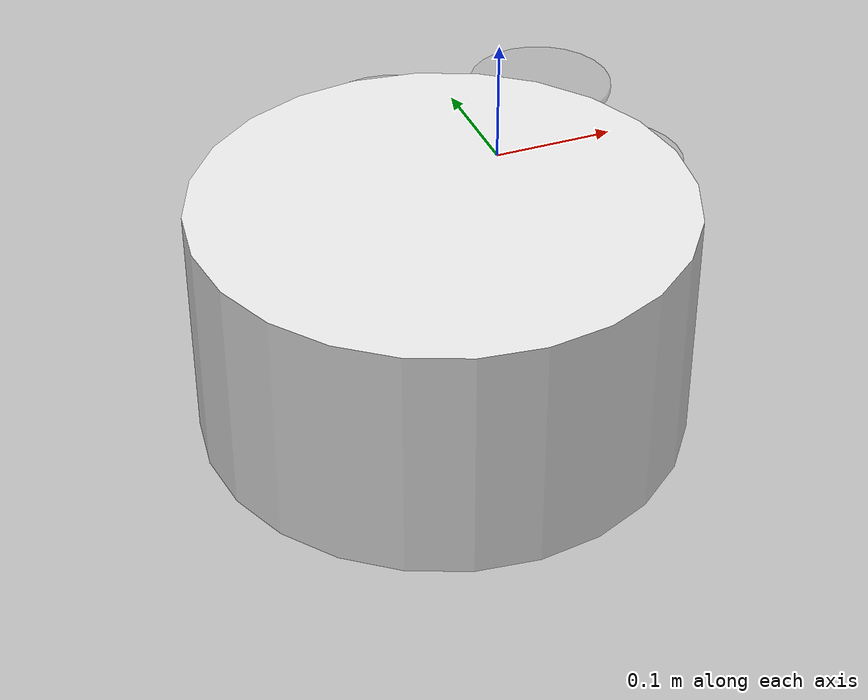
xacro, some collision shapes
<?xml version="1.0"?>
<robot xmlns:xacro="http://ros.org/wiki/xacro" name="copter">

<!-- Ray macros -->
	<xacro:include filename="$(find gscn_pioneer_description)/urdf/pioneer_ray.xacro"/>
	<xacro:include filename="$(find gscn_pioneer_description)/urdf/common_properties.xacro"/>
<!-- Build the body frame -->

	<link name="base_link">
		<collision>
			<origin	xyz="-0.07968 -0.07968 -0.077" rpy="0 0 0" />
			<geometry>
				<cylinder radius="0.2" length="0.2"/>
			</geometry>
		</collision>
			<visual>
				<origin	xyz="-0.085 -0.085 -0.077" rpy="0 0 0" />
				<geometry>
					<mesh filename="package://gscn_pioneer_description/meshes/pioneer_frame.stl" />
				</geometry>
				<material name="White" />
			</visual>
		<inertial>
			<mass value="0.4"/>
			<inertia 	ixx="0" ixy="0" ixz="0"
						iyy="0" iyz="0"
						izz="0" />
		</inertial>
	</link>

<!-- Build copter rays -->
	<ray_stick side="r" num="1" angle="-${M_PI/4}" />
	<ray_stick side="r" num="2"	angle="-${M_PI*3/4}" />
	<ray_stick side="l" num="1"	angle="${M_PI/4}" />
	<ray_stick side="l" num="2"	angle="${M_PI*3/4}" />
</robot>

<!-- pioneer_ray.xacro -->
<robot xmlns:xacro="http://ros.org/wiki/xacro" name="copter_ray">

<!-- Build ray -->
	<xacro:macro name="ray_stick" params="side num angle">

	<joint name="ray_joint_${side}${num}" type="fixed">
		<origin xyz="0 0 0" rpy="0 0 ${angle}" />
		<parent link="base_link" />
		<child link="arm_${side}${num}" />
		<limit lower="0" upper="0" effort="0" velocity="0" />
	</joint>

	<link name="arm_${side}${num}">
		<inertial>
			<mass value="0.08"/>
			<inertia 	ixx="0" ixy="0" ixz="0"
						iyy="0" iyz="0"
						izz="0"/>
		</inertial>
	</link>

	<joint name="propeller_joint_${side}${num}" type="fixed">
		<origin xyz="0.095 0 0.017" rpy="0 0 0" />
		<parent link="arm_${side}${num}" />
		<child link="propeller_${side}${num}" />
		<limit lower="0" upper="0" effort="0" velocity="0" />
	</joint>

	<link name="propeller_${side}${num}">
		<visual>
			<origin	xyz="0 0 0" rpy="0 0 0" />
			<geometry>
				<cylinder radius="0.06" length="0.006"/>
			</geometry>
			<material name="Grey" />
		</visual>
		<inertial>
			<mass value="0.015"/>
			<inertia 	ixx="0" ixy="0" ixz="0"
						iyy="0" iyz="0"
						izz="0"/>
		</inertial>
	</link>
</xacro:macro>

</robot>

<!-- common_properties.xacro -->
<!--  Various useful properties such as constants and materials  -->
<robot name="xacro_properties" xmlns:xacro="http://ros.org/wiki/xacro">
	<xacro:property name="M_PI" value="3.1415926535897931" />

	<material name="White">
		<color rgba="0.9 0.9 0.9 1"/>
	</material>

	<material name="Grey">
		<color rgba="0.6 0.6 0.6 0.3"/>
	</material>

	<material name="Grey_frame">
		<color rgba="0.2 0.2 0.2 1"/>
	</material>

	<material name="Black">
		<color rgba="0.1 0.1 0.1 1"/>
	</material>

	<material name="Red">
		<color rgba="0.7 0.2 0.1 1"/>
	</material>

	<material name="Grey_blue">
		<color rgba="0.1 0.1 0.3 0.3" />
	</material>

	<material name="Orange">
		<color rgba="1.0 0.4 0.0 1"/>
	</material>

</robot>
